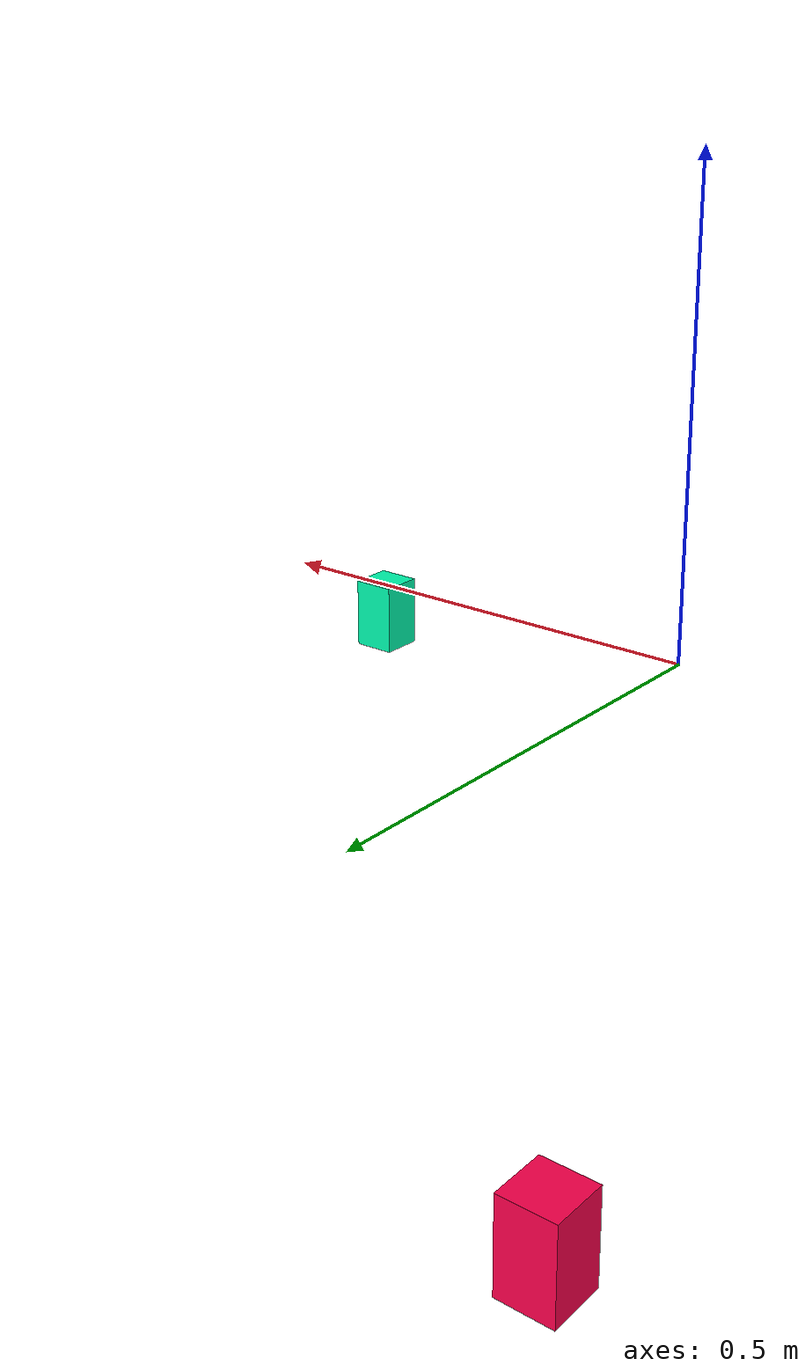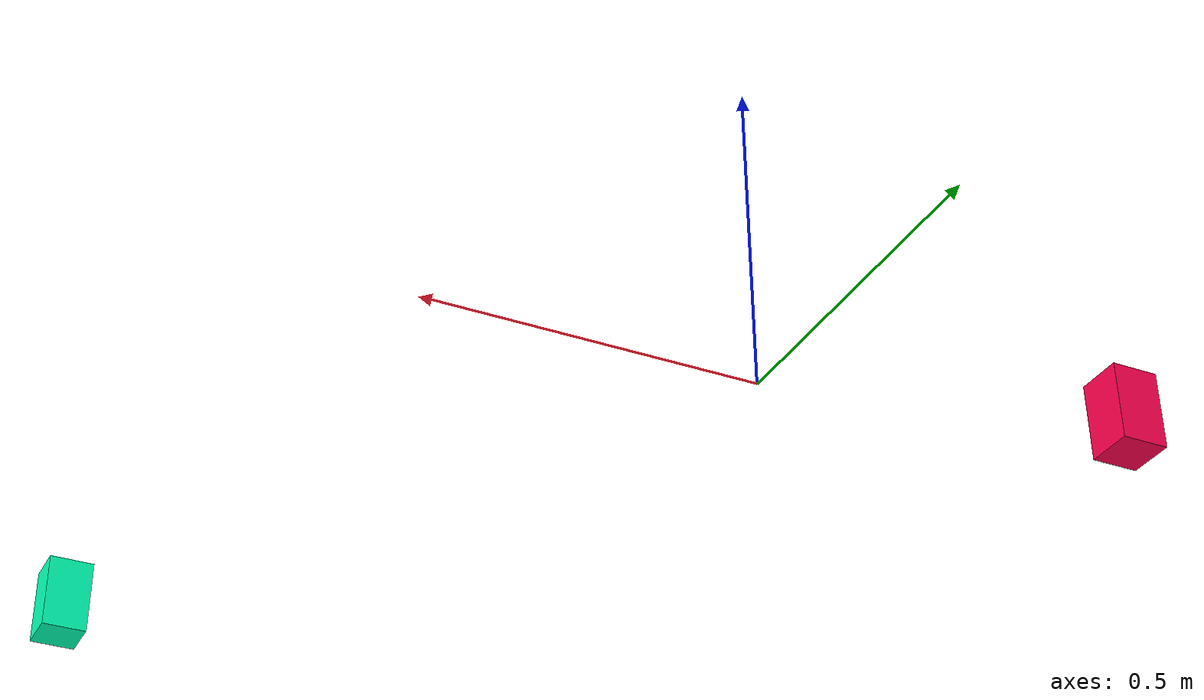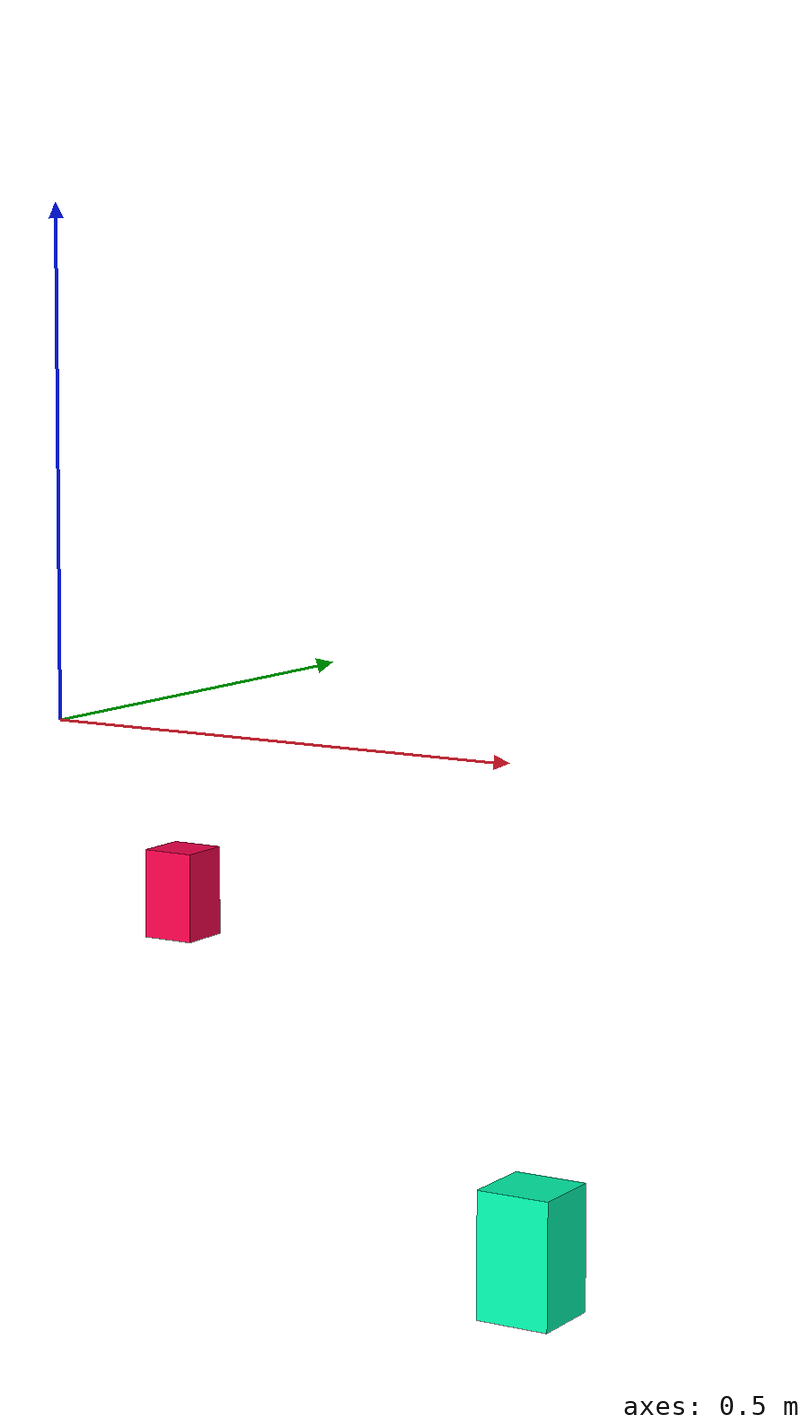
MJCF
<mujoco model="arm3d">
    <compiler angle="radian" coordinate="local" inertiafromgeom="true" meshdir="mesh" texturedir="textures" />
    <option gravity="0 0 0" integrator="Euler" iterations="20" timestep="0.01" />

    <default>
        <joint armature="0.04" damping="1" limited="true" />
        <geom conaffinity="0" condim="1" contype="0" density="10" friction=".8 .1 .1" margin="0.002" />
    </default>

    <worldbody>

        <geom conaffinity="1" contype="1" condim="1" name="table" pos="0 0.5 -0.325" size="10 10 0.1" type="plane" rgba="0 0 0 0"/>

        <body name="obj1" pos="-0.2 0.5 -0.325">
            <joint limited="true" axis="1 0 0" damping="1.5" name="obj1_slidex" pos="0 0 0.05" range="-.2 .8" type="slide" />
            <joint limited="true" axis="0 1 0" damping="1.5" name="obj1_slidey" pos="0 0 0.05" range="-.5 .5" type="slide" />
            <geom conaffinity="1" contype="1" pos="0 0 0.05" density="0.0005" size="0.03 0.03 0.05" rgba="1 0. 0.3 1" type="box" />
        </body>

        <body name="obj2" pos="0.8 -0.5 -0.325">
            <joint limited = "true" axis="1 0 0" damping="1.5" name="obj2_slidex" pos="0 0 0.05" range="-.2 .8" type="slide" />
            <joint limited = "true" axis="0 1 0" damping="1.5" name="obj2_slidey" pos="0 0 0.05" range="-.5 .5" type="slide" />
            <geom conaffinity="1" contype="1" pos="0 0 0.05" density="0.0005" size="0.03 0.03 0.05" rgba="0. 1. 0.7 1" type="box" />
        </body>

    </worldbody>

    <actuator>
        <motor ctrllimited="true" ctrlrange="-1.0 1.0" joint="obj1_slidex" />
        <motor ctrllimited="true" ctrlrange="-1.0 1.0" joint="obj1_slidey" />

        <motor ctrllimited="true" ctrlrange="-1.0 1.0" joint="obj2_slidex" />
        <motor ctrllimited="true" ctrlrange="-1.0 1.0" joint="obj2_slidey" />
    </actuator>

</mujoco>
